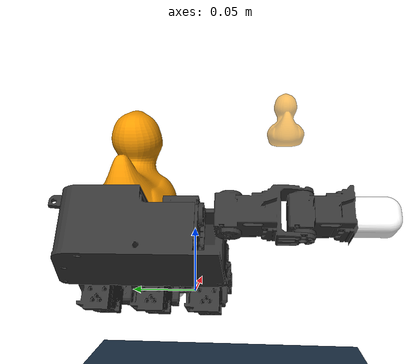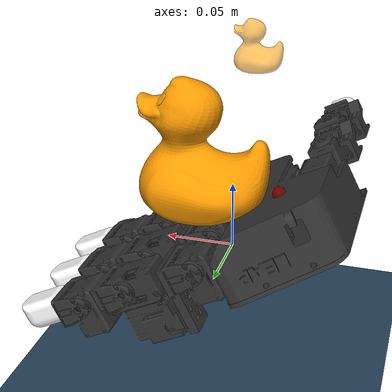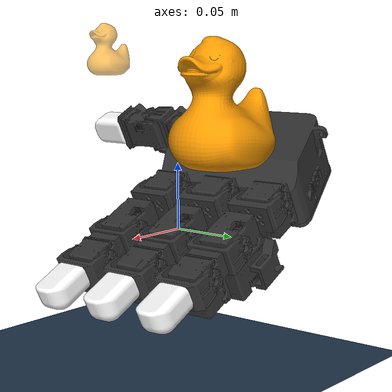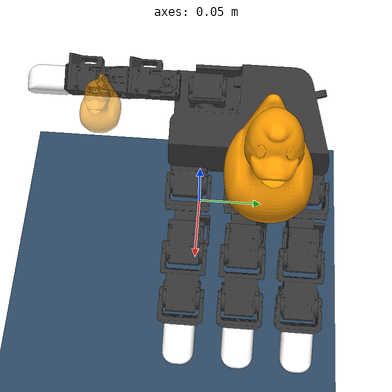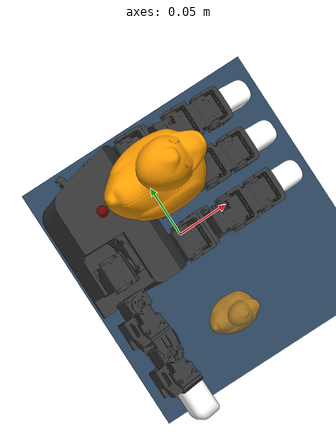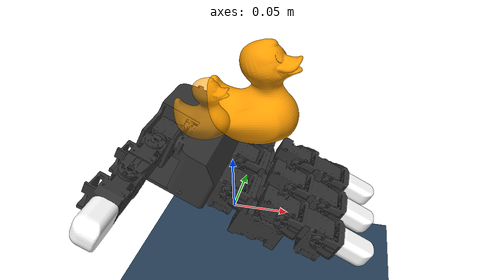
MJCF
<mujoco model="right_leap_hand scene duck_med_foam16b">
  <include file="./leap_right_hand_med.xml" />
  <statistic center="0 0 0" extent="0.3" />
  <visual>
    <rgba haze="0.15 0.25 0.35 1" />
    <quality shadowsize="8192" />
    <global azimuth="130" elevation="-40" offwidth="1280" offheight="960" />
  </visual>
  <asset>
    <mesh name="rubber_duck_mesh" file="../../objects/rubber_duck.stl" maxhullvert="30" />
    <!-- Same mesh at the goal-marker scale (0.43x, matching the cube scene's
    0.015/0.035 goal-to-object ratio). -->
    <mesh name="rubber_duck_goal" file="../../objects/rubber_duck.stl" scale="0.43 0.43 0.43" />
    <texture type="2d" name="groundplane" builtin="checker" mark="edge" rgb1="0.2 0.3 0.4" rgb2="0.1 0.2 0.3" markrgb="0.8 0.8 0.8" width="300" height="300" />
    <material name="groundplane" texture="groundplane" texuniform="true" texrepeat="5 5" reflectance="0." />
  </asset>
  <worldbody>
    <light directional="true" ambient="0.2 0.2 0.2" diffuse="0.8 0.8 0.8" castshadow="false" pos="0 1 4" dir="0 0 -1" name="light0" />
    <camera name="demo-cam" pos="-0.003 -0.393 0.317" xyaxes="1.000 -0.000 0.000 0.000 0.462 0.887" />
    <geom name="floor" pos="0 0 -0.1" size="0 0 0.05" type="plane" material="groundplane" />
    <body name="goal" pos="0.005 -0.07 0.1353" quat="1 0 0 0" mocap="true">
      <geom name="goal_visual" type="mesh" mesh="rubber_duck_goal" contype="0" conaffinity="0" density="0" rgba="0.97 0.6 0 0.6" />
    </body>
    <body name="obj" pos="0.02 0.05 0.1">
      <freejoint name="obj_joint" />
      <inertial pos="-0.0088857 -0.0000003 -0.0152658" quat="0.6896432 0.1561964 0.1561924 0.6896367" mass="0.05" diaginertia="4.695783e-05 3.827842e-05 2.721782e-05" />
      <!-- Visual-only Duck: the calibrated spheres above carry contact, while this mesh shows the original shape and contributes no mass or collision. -->
      <geom name="obj_sphere_000" type="sphere" size="0.03130176" pos="-0.0110528010746 0.000562070911352 -0.0245131725902" group="3" friction="0.5" density="0" rgba="0.18 0.55 0.95 0.35" />
      <geom name="obj_sphere_001" type="sphere" size="0.02553696" pos="-0.0183248010746 0.0128011109114 -0.0293544525902" group="3" friction="0.5" density="0" rgba="0.18 0.55 0.95 0.35" />
      <geom name="obj_sphere_002" type="sphere" size="0.02882976" pos="-0.0306646410746 0.000175190911352 -0.0257026125902" group="3" friction="0.5" density="0" rgba="0.18 0.55 0.95 0.35" />
      <geom name="obj_sphere_003" type="sphere" size="0.02473056" pos="-0.0208918410746 -0.0117268890886 -0.0291989325902" group="3" friction="0.5" density="0" rgba="0.18 0.55 0.95 0.35" />
      <geom name="obj_sphere_004" type="sphere" size="0.0225888" pos="0.000206078925362 0.000253910911352 -0.00241493259023" group="3" friction="0.5" density="0" rgba="0.18 0.55 0.95 0.35" />
      <geom name="obj_sphere_005" type="sphere" size="0.02453088" pos="-0.00435200107464 -0.000159849088648 0.0220189874098" group="3" friction="0.5" density="0" rgba="0.18 0.55 0.95 0.35" />
      <geom name="obj_sphere_006" type="sphere" size="0.02478624" pos="0.00223071892536 -0.000109929088648 0.0202449074098" group="3" friction="0.5" density="0" rgba="0.18 0.55 0.95 0.35" />
      <geom name="obj_sphere_007" type="sphere" size="0.01581888" pos="0.0180083189254 -0.000161769088648 0.0220401074098" group="3" friction="0.5" density="0" rgba="0.18 0.55 0.95 0.35" />
      <geom name="obj_sphere_008" type="sphere" size="0.02826528" pos="-5.02410746379e-05 0.00839279091135 -0.0262315725902" group="3" friction="0.5" density="0" rgba="0.18 0.55 0.95 0.35" />
      <geom name="obj_sphere_009" type="sphere" size="0.02782272" pos="-0.00201248107464 -0.0105057690886 -0.0271349325902" group="3" friction="0.5" density="0" rgba="0.18 0.55 0.95 0.35" />
      <geom name="obj_sphere_010" type="sphere" size="0.02935104" pos="0.00442239892536 -0.00378096908865 -0.0249298125902" group="3" friction="0.5" density="0" rgba="0.18 0.55 0.95 0.35" />
      <geom name="obj_sphere_011" type="sphere" size="0.02684832" pos="0.00787743892536 0.00433775091135 -0.0267134925902" group="3" friction="0.5" density="0" rgba="0.18 0.55 0.95 0.35" />
      <geom name="obj_sphere_012" type="sphere" size="0.02115648" pos="-0.0390358410746 0.000135830911352 -0.0190162125902" group="3" friction="0.5" density="0" rgba="0.18 0.55 0.95 0.35" />
      <geom name="obj_sphere_013" type="sphere" size="0.01663296" pos="-0.0436620810746 -0.000373929088648 -0.0116280525902" group="3" friction="0.5" density="0" rgba="0.18 0.55 0.95 0.35" />
      <geom name="obj_sphere_014" type="sphere" size="0.01277952" pos="-0.0469241610746 -0.000324009088648 -0.00500021259023" group="3" friction="0.5" density="0" rgba="0.18 0.55 0.95 0.35" />
      <geom name="obj_sphere_015" type="sphere" size="0.009816" pos="-0.0480003210746 0.000486230911352 -0.000877012590228" group="3" friction="0.5" density="0" rgba="0.18 0.55 0.95 0.35" />
      <geom name="obj_visual" type="mesh" mesh="rubber_duck_mesh" contype="0" conaffinity="0" density="0" rgba="0.97 0.6 0 1.0" />
    </body>
  </worldbody>
</mujoco>

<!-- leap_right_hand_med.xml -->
<mujoco model="leap_rh">
  <compiler angle="radian" meshdir="./leap_hand/assets/"/>

  <!-- mesh assets -->
  <asset>
    <material name="black" rgba="0.2 0.2 0.2 1" />
    <material name="white" rgba="1 1 1 1" />

    <mesh name="palm" file="palm_right.obj"/>
    <mesh name="base" file="base.obj"/>
    <mesh name="proximal" file="proximal.obj"/>
    <mesh name="medial" file="medial.obj"/>
    <mesh name="distal" file="distal.obj"/>
    <mesh name="tip" file="tip.obj"/>
    <mesh name="thumb_base" file="thumb_base.obj"/>
    <mesh name="thumb_proximal" file="thumb_proximal.obj"/>
    <mesh name="thumb_distal" file="thumb_distal.obj"/>
    <mesh name="thumb_tip" file="thumb_tip.obj"/>
    <mesh name="tip_vis" file="tip_vis.obj"/>
    <mesh name="thumb_tip_vis" file="thumb_tip_vis.obj"/>
  </asset>

  <!-- defaults -->
  <default>
    <!-- constraint stiffness -->

    <!-- actuator defaults -->
    <position kp="3.0" kv="0.01" />
    <joint damping="0.03"/>

    <!-- geom class defaults -->
    <default class="visual">
      <geom group="1" type="mesh" contype="0" conaffinity="0" density="0" material="black" />
    </default>
    <default class="collision">
      <geom material="black" group="3" />
    </default>
    <default class="tip">
      <geom type="mesh" mesh="tip" friction="0.5" material="white" group="3" />
    </default>
    <default class="thumb_tip">
      <geom type="mesh" mesh="thumb_tip" friction="0.5" material="white" group="3" />
    </default>
    <!-- Visual-only fingertip meshes: contype/conaffinity 0 + density 0 (never
    collide, carry no mass), group="1" so they render normally everywhere,
    matching the "visual" class convention above. -->
    <default class="tip_vis">
      <geom type="mesh" mesh="tip_vis" material="white" group="1" contype="0" conaffinity="0" density="0" />
    </default>
    <default class="thumb_tip_vis">
      <geom type="mesh" mesh="thumb_tip_vis" material="white" group="1" contype="0" conaffinity="0" density="0" />
    </default>

    <!-- joint class defaults -->
    <default class="mcp">
      <joint pos="0 0 0" axis="0 0 -1"
        limited="true" range="-0.0 2.23" />
      <position ctrlrange="-0.314 2.23" />
    </default>
    <default class="rot">
      <joint pos="0 0 0" axis="0 0 -1"
        limited="true" range="-1.047 1.047" />
      <position ctrlrange="-1.047 1.047" />
    </default>
    <default class="pip">
      <joint pos="0 0 0" axis="0 0 -1"
        limited="true" range="-0.506 1.885" />
      <position ctrlrange="-0.506 1.885" />
    </default>
    <default class="dip">
      <joint pos="0 0 0" axis="0 0 -1"
        limited="true" range="-0.366 2.042" />
      <position ctrlrange="-0.366 2.042" />
    </default>
    <default class="thumb_cmc">
      <joint pos="0 0 0" axis="0 0 -1"
        limited="true" range="-0.349 2.094" />
      <position ctrlrange="-0.349 2.094" />
    </default>
    <default class="thumb_axl">
      <joint pos="0 0 0" axis="0 0 -1"
        limited="true" range="-0.349 2.094" />
      <position ctrlrange="-0.349 2.094" />
    </default>
    <default class="thumb_mcp">
      <joint pos="0 0 0" axis="0 0 -1"
        limited="true" range="-0.47 2.443" />
      <position ctrlrange="-0.47 2.443" />
    </default>
    <default class="thumb_ipl">
      <joint pos="0 0 0" axis="0 0 -1"
        limited="true" range="-1.34 1.88" />
      <position ctrlrange="-1.34 1.88" />
    </default>
  </default>

  <!-- collision filtering -->
  <contact>
    <!-- filter the palm from all other finger bodies except the tips -->
    <exclude body1="palm" body2="if_bs" />
    <exclude body1="palm" body2="mf_bs" />
    <exclude body1="palm" body2="rf_bs" />
    <exclude body1="palm" body2="th_mp" />

    <exclude body1="palm" body2="if_px" />
    <exclude body1="palm" body2="mf_px" />
    <exclude body1="palm" body2="rf_px" />
    <exclude body1="palm" body2="th_bs" />

    <exclude body1="palm" body2="if_md" />
    <exclude body1="palm" body2="mf_md" />
    <exclude body1="palm" body2="rf_md" />
    <exclude body1="palm" body2="th_px" />

    <!-- none of the base fingertip geoms can touch each other -->
    <exclude body1="if_bs" body2="mf_bs" />
    <exclude body1="if_bs" body2="rf_bs" />
    <exclude body1="mf_bs" body2="rf_bs" />

    <exclude body1="th_mp" body2="if_bs" />
    <exclude body1="th_mp" body2="mf_bs" />
    <exclude body1="th_mp" body2="rf_bs" />
  </contact>

  <!-- actuators -->
  <actuator>
    <!-- index -->
    <position name="if_mcp_act" joint="if_mcp" class="mcp" />
    <position name="if_rot_act" joint="if_rot" class="rot" />
    <position name="if_pip_act" joint="if_pip" class="pip" />
    <position name="if_dip_act" joint="if_dip" class="dip" />

    <!-- middle -->
    <position name="mf_mcp_act" joint="mf_mcp" class="mcp" />
    <position name="mf_rot_act" joint="mf_rot" class="rot" />
    <position name="mf_pip_act" joint="mf_pip" class="pip" />
    <position name="mf_dip_act" joint="mf_dip" class="dip" />

    <!-- ring -->
    <position name="rf_mcp_act" joint="rf_mcp" class="mcp" />
    <position name="rf_rot_act" joint="rf_rot" class="rot" />
    <position name="rf_pip_act" joint="rf_pip" class="pip" />
    <position name="rf_dip_act" joint="rf_dip" class="dip" />

    <!-- thumb -->
    <position name="th_cmc_act" joint="th_cmc" class="thumb_cmc" />
    <position name="th_axl_act" joint="th_axl" class="thumb_axl" />
    <position name="th_mcp_act" joint="th_mcp" class="thumb_mcp" />
    <position name="th_ipl_act" joint="th_ipl" class="thumb_ipl" />
  </actuator>

  <!-- sensors -->
  <sensor>
    <!-- index -->
    <jointpos name="if_mcp_sensor" joint="if_mcp" />
    <jointpos name="if_rot_sensor" joint="if_rot" />
    <jointpos name="if_pip_sensor" joint="if_pip" />
    <jointpos name="if_dip_sensor" joint="if_dip" />

    <!-- middle -->
    <jointpos name="mf_mcp_sensor" joint="mf_mcp" />
    <jointpos name="mf_rot_sensor" joint="mf_rot" />
    <jointpos name="mf_pip_sensor" joint="mf_pip" />
    <jointpos name="mf_dip_sensor" joint="mf_dip" />

    <!-- ring -->
    <jointpos name="rf_mcp_sensor" joint="rf_mcp" />
    <jointpos name="rf_rot_sensor" joint="rf_rot" />
    <jointpos name="rf_pip_sensor" joint="rf_pip" />
    <jointpos name="rf_dip_sensor" joint="rf_dip" />

    <!-- thumb -->
    <jointpos name="th_cmc_sensor" joint="th_cmc" />
    <jointpos name="th_axl_sensor" joint="th_axl" />
    <jointpos name="th_mcp_sensor" joint="th_mcp" />
    <jointpos name="th_ipl_sensor" joint="th_ipl" />
  </sensor>

  <worldbody>
    <body name="palm" pos="0 0 0.01" quat="0 0.97236992  0 -0.23344536">
      <!-- palm -->
      <inertial pos="-0.049542 -0.042914 -0.010227" quat="0.565586 0.427629 -0.574956 0.408254" mass="0.237" diaginertia="0.000407345 0.000304759 0.000180736"/>
      <geom name="palm_visual" pos="-0.02 0.02575 -0.0347" quat="1 0 0 0" class="visual" mesh="palm"/>
      <geom name="palm_collision_1" size="0.011 0.013 0.017" pos="-0.009 0.008 -0.011" type="box" class="collision" />
      <geom name="palm_collision_2" size="0.011 0.013 0.017" pos="-0.009 -0.037 -0.011" type="box" class="collision"/>
      <geom name="palm_collision_3" size="0.011 0.013 0.017" pos="-0.009 -0.082 -0.011" type="box" class="collision"/>
      <geom name="palm_collision_6" size="0.005 0.06 0.01" pos="-0.032 -0.035 -0.024" quat="0.923956 0 0.382499 0" type="box" class="collision" />
      <geom name="palm_collision_7" size="0.012 0.058 0.023" pos="-0.048 -0.033 -0.0115" type="box" class="collision"/>
      <geom name="palm_collision_8" size="0.022 0.026 0.023" pos="-0.078 -0.053 -0.0115" type="box" class="collision"/>
      <site name="tag" pos="-0.067 -0.05 -0.035" rgba="0.5 0 0 0.8" quat="1 0 0 -1"/>

      <!-- index -->
        <body name="if_bs" pos="-0.007 0.023 -0.0187" quat="0.5 0.5 0.5 -0.5">
          <inertial pos="-0.022516 0.033882 0.016359" quat="0.388092 0.677951 -0.247713 0.573067"
            mass="0.044" diaginertia="1.74972e-05 1.61504e-05 7.21342e-06" />
          <joint name="if_mcp" class="mcp" />
          <geom name="if_bs_visual" pos="0.0084 0.0077 0.01465" quat="1 0 0 0" class="visual"
            mesh="base" />
          <geom name="if_bs_collision_1" size="0.01 0.003 0.017" pos="0 0.018 0.0147" type="box" class="collision" />

          <body name="if_px" pos="-0.0122 0.0381 0.0145" quat="0.500003 -0.5 -0.499997 0.5">
            <inertial pos="0.0075 -0.0002 -0.011" quat="0 0.707107 0 0.707107" mass="0.032"
              diaginertia="4.8853e-06 4.3733e-06 3.0933e-06" />
            <joint name="if_rot" class="rot" />
            <geom name="if_px_visual" pos="0.0096 0.0002 0.0007" quat="0.500003 -0.5 -0.5 -0.499997"
              class="visual" mesh="proximal" />
            <geom name="if_px_collision" size="0.017 0.013 0.011" pos="0.0075 -0.0002 -0.011"
              type="box" class="collision" />

            <body name="if_md" pos="0.015 0.0143 -0.013" quat="0.500003 0.5 -0.5 0.499997">
              <inertial pos="0.0054215 -0.029148 0.015" quat="0.687228 0.687228 0.166487 0.166487"
                mass="0.037" diaginertia="8.28004e-06 8.1598e-06 5.39516e-06" />
              <joint name="if_pip" class="pip" />
              <geom name="if_md_visual" pos="0.0211 -0.0084 0.0097" quat="2.67949e-08 -1 0 0"
                class="visual" mesh="medial" />
              <geom name="if_md_collision_1" size="0.008 0.003 0.013" pos="0 -0.02 0.015" type="box" class="collision" />
              <geom name="if_md_collision_5" size="0.017 0.011 0.013" pos="0.0075 -0.035 0.015"
                type="box" class="collision" />

              <body name="if_ds" pos="0 -0.0361 0.0002">
                <inertial pos="-0.0008794 -0.027019 0.014594"
                  quat="0.702905 0.710643 -0.0212937 -0.0214203" mass="0.016"
                  diaginertia="3.71863e-06 3.02396e-06 1.6518e-06" />
                <joint name="if_dip" class="dip" />
                <geom name="if_ds_visual" pos="0.0132 -0.0061 0.0144" quat="2.67949e-08 1 0 0"
                  class="visual" mesh="distal" />
                <geom name="if_ds_collision_1" size="0.01 0.003 0.015" pos="0 -0.017 0.015"
                  type="box" class="collision" />

                <geom type="capsule" fromto="0 -0.0075 0.0145 -0.001 -0.035 0.015" size="0.0125" class="collision"/>
                <geom name="if_tip_vis" class="tip_vis" />
                <site name="if_tip" pos="0 -0.05 0.015" group="4"/>
              </body>

            </body>
          </body>
        </body>  <!--
        index -->

        <!-- middle -->
        <body name="mf_bs" pos="-0.0071 -0.0224 -0.0187" quat="0.500003 0.5 0.5 -0.499997">
          <inertial pos="-0.022516 0.033882 0.016359" quat="0.388092 0.677951 -0.247713 0.573067"
            mass="0.044" diaginertia="1.74972e-05 1.61504e-05 7.21342e-06" />
          <joint name="mf_mcp" class="mcp" />
          <geom name="mf_bs_visual" pos="0.0084 0.0077 0.01465" quat="1 0 0 0" class="visual"
            mesh="base" />
          <geom name="mf_bs_collision_1" size="0.01 0.003 0.017" pos="0 0.018 0.0147" type="box" class="collision" />

          <body name="mf_px" pos="-0.0122 0.0381 0.0145" quat="0.500003 -0.5 -0.499997 0.5">
            <inertial pos="0.0075 -0.0002 -0.011" quat="0 0.707107 0 0.707107" mass="0.032"
              diaginertia="4.8853e-06 4.3733e-06 3.0933e-06" />
            <joint name="mf_rot" class="rot" />
            <geom name="mf_px_visual" pos="0.0096 0.0003 0.0007" quat="0.500003 -0.5 -0.5 -0.499997"
              class="visual" mesh="proximal" />
            <geom name="mf_px_collision" size="0.017 0.013 0.011" pos="0.0075 -0.0002 -0.011"
              type="box" class="collision" />

            <body name="mf_md" pos="0.015 0.0143 -0.013" quat="0.500003 0.5 -0.5 0.499997">
              <inertial pos="0.0054215 -0.029148 0.015" quat="0.687228 0.687228 0.166487 0.166487"
                mass="0.037" diaginertia="8.28004e-06 8.1598e-06 5.39516e-06" />
              <joint name="mf_pip" class="pip" />
              <geom name="mf_md_visual" pos="0.0211 -0.0084 0.0097" quat="1.32679e-06 -1 0 0"
                class="visual" mesh="medial" />
              <geom name="mf_md_collision_1" size="0.008 0.003 0.013" pos="0 -0.02 0.015" type="box" class="collision" />
              <geom name="mf_md_collision_5" size="0.017 0.011 0.013" pos="0.0075 -0.035 0.015"
                type="box" class="collision" />

              <body name="mf_ds" pos="0 -0.0361 0.0002">
                <inertial pos="-0.0008794 -0.027019 0.014594"
                  quat="0.702905 0.710643 -0.0212937 -0.0214203" mass="0.016"
                  diaginertia="3.71863e-06 3.02396e-06 1.6518e-06" />
                <joint name="mf_dip" class="dip" />
                <geom name="mf_ds_visual" pos="0.0132 -0.0061 0.0145" quat="1.32679e-06 1 0 0"
                  class="visual" mesh="distal" />
                <geom name="mf_ds_collision_1" size="0.01 0.003 0.015" pos="0 -0.017 0.015"
                  type="box" class="collision" />

                <geom type="capsule" fromto="0 -0.0075 0.0145 -0.001 -0.035 0.015" size="0.0125" class="collision"/>
                <geom name="mf_tip_vis" class="tip_vis" />
                <site name="mf_tip" pos="0 -0.05 0.015" group="4"/>
              </body>
            </body>
          </body>
        </body>  <!--
        middle -->

        <!-- ring -->
        <body name="rf_bs" pos="-0.00709 -0.0678 -0.0187" quat="0.500003 0.5 0.5 -0.499997">
          <inertial pos="-0.022516 0.033882 0.016359" quat="0.388092 0.677951 -0.247713 0.573067"
            mass="0.044" diaginertia="1.74972e-05 1.61504e-05 7.21342e-06" />
          <joint name="rf_mcp" class="mcp" />
          <geom name="rf_bs_visual" pos="0.0084 0.0077 0.01465" quat="1 0 0 0" class="visual"
            mesh="base" />
          <geom name="rf_bs_collision_1" size="0.01 0.003 0.017" pos="0 0.018 0.0147" type="box" class="collision" />

          <body name="rf_px" pos="-0.0122 0.0381 0.0145" quat="0.500003 -0.5 -0.499997 0.5">
            <inertial pos="0.0075 -0.0002 -0.011" quat="0 0.707107 0 0.707107" mass="0.032"
              diaginertia="4.8853e-06 4.3733e-06 3.0933e-06" />
            <joint name="rf_rot" class="rot" />
            <geom name="rf_px_visual" pos="0.0096 0.0003 0.0007" quat="0.500003 -0.5 -0.5 -0.499997"
              class="visual" mesh="proximal" />
            <geom name="rf_px_collision" size="0.017 0.013 0.011" pos="0.0075 -0.0002 -0.011"
              type="box" class="collision" />

            <body name="rf_md" pos="0.015 0.0143 -0.013" quat="0.500003 0.5 -0.5 0.499997">
              <inertial pos="0.0054215 -0.029148 0.015" quat="0.687228 0.687228 0.166487 0.166487"
                mass="0.037" diaginertia="8.28004e-06 8.1598e-06 5.39516e-06" />
              <joint name="rf_pip" class="pip" />
              <geom name="rf_md_visual" pos="0.0211 -0.0084 0.0097" quat="0 -1 0 0" class="visual"
                mesh="medial" />
              <geom name="rf_md_collision_1" size="0.008 0.003 0.013" pos="0 -0.02 0.015" type="box" class="collision" />
              <geom name="rf_md_collision_5" size="0.017 0.011 0.013" pos="0.0075 -0.035 0.015"
                type="box" class="collision" />

              <body name="rf_ds" pos="0 -0.03609 0.0002">
                <inertial pos="-0.0008794 -0.027019 0.014594"
                  quat="0.702905 0.710643 -0.0212937 -0.0214203" mass="0.016"
                  diaginertia="3.71863e-06 3.02396e-06 1.6518e-06" />
                <joint name="rf_dip" class="dip" />
                <geom name="rf_ds_visual" pos="0.0132 -0.0061 0.0145" quat="0 1 0 0" class="visual"
                  mesh="distal" />
                <geom name="rf_ds_collision_1" size="0.01 0.003 0.015" pos="0 -0.017 0.015"
                  type="box" class="collision" />

                <geom type="capsule" fromto="0 -0.01 0.015 0 -0.038 0.015" size="0.0125" class="collision"/>
                <geom name="rf_tip_vis" class="tip_vis" />
                <site name="rf_tip" pos="0 -0.05 0.015" group="4"/>
              </body>
            </body>
          </body>
        </body>  <!--
        ring -->

        <!-- thumb -->
        <body name="th_mp" pos="-0.0693 -0.0012 -0.0216" quat="0.707109 0 0.707105 0">
          <inertial pos="0.0075 -0.0002 -0.011" quat="0 0.707107 0 0.707107" mass="0.032"
            diaginertia="4.8853e-06 4.3733e-06 3.0933e-06" />
          <joint name="th_cmc" class="thumb_cmc" />
          <geom name="th_mp_visual" pos="-0.0053 0.0003 0.00078" quat="0.500003 -0.5 -0.5 -0.499997"
            class="visual" mesh="proximal" />
          <geom name="th_mp_collision" size="0.017 0.013 0.011" pos="-0.0075 -0.0002 -0.011"
            type="box" class="collision" />

          <body name="th_bs" pos="0 0.0143 -0.013" quat="0.500003 0.5 -0.5 0.499997">
            <inertial pos="0 0 -0.0070806" quat="0.707107 0.707107 0 0" mass="0.003"
              diaginertia="6.1932e-07 5.351e-07 2.1516e-07" />
            <joint name="th_axl" class="thumb_axl" />

            <body name="th_px" pos="0 0.0145 -0.017" quat="0.707109 -0.707105 0 0">
              <inertial pos="-0.0020593 0.015912 -0.013733"
                quat="0.698518 0.697382 -0.104933 0.121324" mass="0.038"
                diaginertia="9.87104e-06 9.32653e-06 4.36203e-06" />
              <joint name="th_mcp" class="thumb_mcp" />
              <geom name="th_px_visual" pos="0.0439 0.0579 -0.0086" quat="1 0 0 0" class="visual"
                mesh="thumb_proximal" />
              <geom name="th_px_collision_1" size="0.01 0.02 0.012" pos="0 0.0105 -0.014" type="box" class="collision" />

              <body name="th_ds" pos="0 0.0466 0.0002" quat="1.32679e-06 0 0 1">
                <inertial pos="0.00096191 -0.024203 -0.014419"
                  quat="0.35287 0.311272 -0.632839 0.614904" mass="0.049"
                  diaginertia="2.08591e-05 2.0402e-05 4.71335e-06" />
                <joint name="th_ipl" class="thumb_ipl" />
                <geom name="th_ds_visual" pos="0.0625 0.0784 0.0489" quat="1 0 0 0" class="visual"
                  mesh="thumb_distal" />
                <geom name="th_ds_collision_1" size="0.01 0.018 0.012" pos="0 -0.0085 -0.015"
                  type="box" class="collision" />

                <geom type="capsule" fromto="0 -0.019 -0.014 0 -0.05 -0.014" size="0.0125" class="collision"/>
                <geom name="th_tip_vis" class="thumb_tip_vis" />
                <site name="th_tip" pos="0 -0.06 -0.015" group="4"/>
              </body>
            </body>
          </body>
        </body>  <!--
        thumb -->

    </body>  <!-- palm -->
  </worldbody>
</mujoco>
